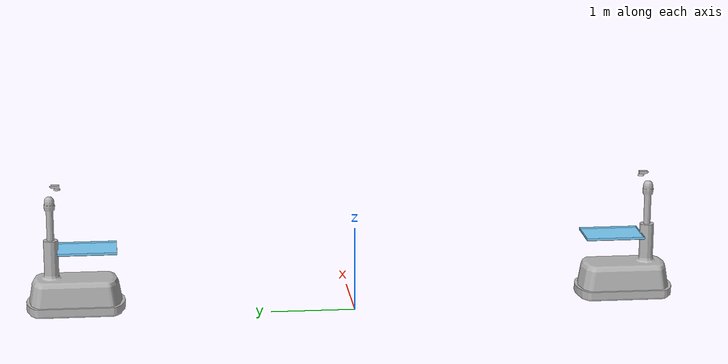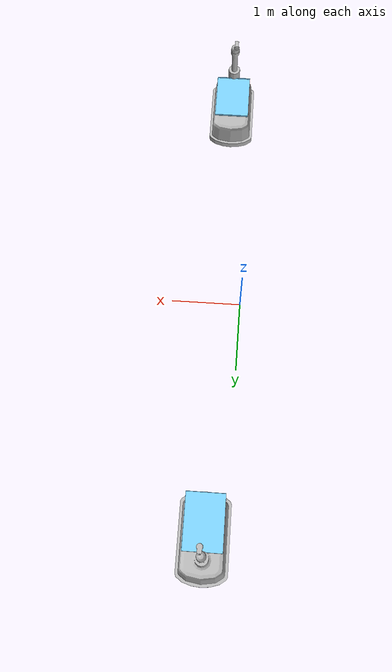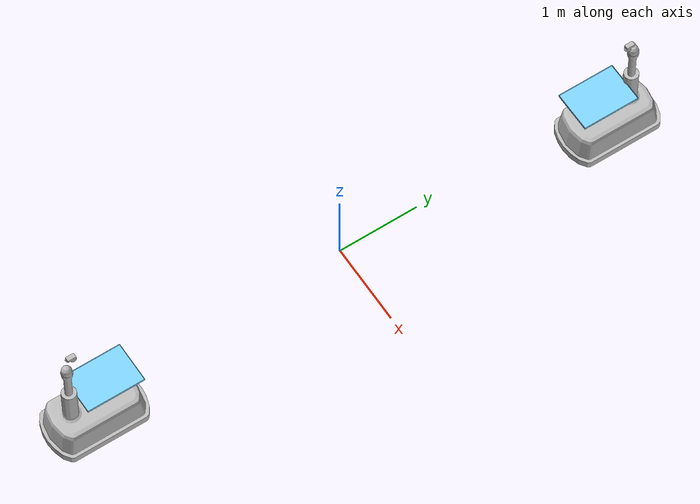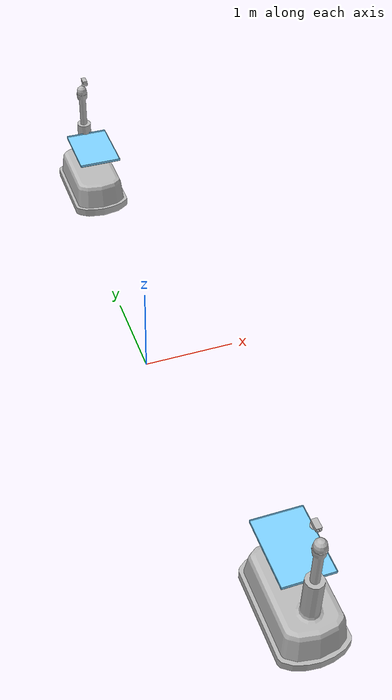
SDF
<sdf version="1.6">
 <world name="ariac">
  <scene><shadows>0</shadows><ambient>0.4 0.4 0.4 1</ambient><background>0.7 0.7 0.7 1</background></scene>
  <light name="sun" type="directional">
   <pose>0 0 10 0 -0 0</pose>
   <diffuse>0.8 0.8 0.8 1</diffuse>
   <specular>0.2 0.2 0.2 1</specular>
   <attenuation>
    <range>1000</range>
    <constant>0.9</constant>
    <linear>0.01</linear>
    <quadratic>0.001</quadratic>
   </attenuation>
   <direction>-0.5 0.1 -0.9</direction>
  </light>
  <light name="camera_spot_light" type="spot">
   <pose>-10 10 10 0 -1 -0.8</pose>
   <diffuse>0.5 0.5 0.5 1</diffuse>
   <specular>0.1 0.1 0.1 1</specular>
   <direction>0 0 -1</direction>
   <attenuation>
    <range>20</range>
    <constant>0.5</constant>
    <linear>0.01</linear>
    <quadratic>0.001</quadratic>
   </attenuation>
   <cast_shadows>0</cast_shadows>
   <spot><inner_angle>0.6</inner_angle><outer_angle>1</outer_angle><falloff>1</falloff></spot>
  </light>
  <model name="deletion_wall">
   <static>1</static>
   <link name="sensing_link">
    <gravity>0</gravity>
    <sensor name="object_disposal_contact" type="contact">
     <update_rate>10</update_rate>
     <contact><collision>collision</collision><topic>__default_topic__</topic></contact>
    </sensor>
    <collision name="collision"><geometry><box><size>0.1 1 1</size></box></geometry></collision>
    <visual name="visual">
     <geometry><box><size>0.1 1 1</size></box></geometry>
     <cast_shadows>0</cast_shadows>
     <transparency>100</transparency>
    </visual>
   </link>
   <plugin name="object_disposal_plugin" filename="libObjectDisposalPlugin.so">
    <contact_sensor_name>object_disposal_contact</contact_sensor_name>
    <contact_side_normal>1 0 0</contact_side_normal>
    <disposal_pose>30 30 0 0 0 0</disposal_pose>
    <update_rate>5</update_rate>
   </plugin>
   <pose>1.2 -4.1 1.41 0 -0 1.5708</pose>
  </model>
  <model name="agv1">
   <pose>0.3 3.3 0 0 -0 3.14159</pose>
   <static>0</static>
   <link name="agv1::link">
    <inertial>
     <pose>0 0 0.15 0 -0 0</pose>
     <mass>50</mass>
     <inertia><ixx>4.5255</ixx><ixy>0</ixy><ixz>0</ixz><iyy>1.45047</iyy><iyz>0</iyz><izz>5.64264</izz></inertia>
    </inertial>
    <visual name="visual">
     <geometry><mesh><uri>model://warehouse_robot/meshes/robot.dae</uri></mesh></geometry>
    </visual>
    <collision name="collision_base">
     <pose>0 0 0.20437 0 -0 0</pose>
     <surface><contact><ode><max_vel>0</max_vel><min_depth>0.001</min_depth></ode></contact></surface>
     <geometry><box><size>0.55508 1.0228 0.40874</size></box></geometry>
    </collision>
    <collision name="collision_bumper">
     <pose>0 0 0.062205 0 -0 0</pose>
     <geometry><box><size>0.67266 1.17126 0.12441</size></box></geometry>
     <surface><contact><ode><max_vel>0</max_vel><min_depth>0.001</min_depth></ode></contact></surface>
    </collision>
    <collision name="collision_column_large">
     <pose>0 -0.27539 0.43738 0 -0 0</pose>
     <geometry><cylinder><radius>0.08652</radius><length>0.87476</length></cylinder></geometry>
     <surface><contact><ode><max_vel>0</max_vel><min_depth>0.001</min_depth></ode></contact></surface>
    </collision>
    <collision name="collision_column_small">
     <pose>0 -0.27539 0.70424 0 -0 0</pose>
     <geometry><cylinder><radius>0.04261</radius><length>1.40848</length></cylinder></geometry>
     <surface><contact><ode><max_vel>0</max_vel><min_depth>0.001</min_depth></ode></contact></surface>
    </collision>
   </link>
   <plugin name="agv_plugin" filename="libROSAGVPlugin.so">
    <submit_tray_service_name>/ariac/submit_tray</submit_tray_service_name>
    <clear_tray_service_name>/ariac/kit_tray_1/clear_tray</clear_tray_service_name>
    <lock_tray_service_name>/ariac/kit_tray_1/lock_models</lock_tray_service_name>
    <index>1</index>
   </plugin>
   <model name="kit_tray_1">
    <pose>0 0.15 0.75 0 -0 0</pose>
    <static>0</static>
    <link name="kit_tray_1::tray">
     <inertial>
      <mass>1</mass>
      <inertia><ixx>0.0408</ixx><ixy>0</ixy><ixz>0</ixz><iyy>0.02084</iyy><iyz>0</iyz><izz>0.0616</izz></inertia>
     </inertial>
     <sensor name="kit_tray_contact" type="contact">
      <update_rate>1</update_rate>
      <contact><collision>tray_collision</collision><topic>__default_topic__</topic></contact>
     </sensor>
     <gravity>0</gravity>
     <collision name="tray_collision">
      <surface><contact><ode><max_vel>0</max_vel><min_depth>0.001</min_depth></ode></contact></surface>
      <geometry><box><size>0.5 0.7 0.01</size></box></geometry>
     </collision>
     <collision name="tray_collision1">
      <pose>0.25 0 0.0127 0 -0 0</pose>
      <surface><contact><ode><max_vel>0</max_vel><min_depth>0.001</min_depth></ode></contact></surface>
      <geometry><box><size>0.001 0.7 0.0254</size></box></geometry>
     </collision>
     <visual name="tray_visual1">
      <pose>0.25 0 0.0127 0 -0 0</pose>
      <geometry><box><size>0.001 0.7 0.0254</size></box></geometry>
      <material><ambient>0.486275 0.819608 1 1</ambient><diffuse>0.486275 0.819608 1 1</diffuse></material>
     </visual>
     <collision name="tray_collision2">
      <pose>-0.25 0 0.0127 0 -0 0</pose>
      <surface><contact><ode><max_vel>0</max_vel><min_depth>0.001</min_depth></ode></contact></surface>
      <geometry><box><size>0.001 0.7 0.0254</size></box></geometry>
     </collision>
     <visual name="tray_visual2">
      <pose>-0.25 0 0.0127 0 -0 0</pose>
      <geometry><box><size>0.001 0.7 0.0254</size></box></geometry>
      <material><ambient>0.486275 0.819608 1 1</ambient><diffuse>0.486275 0.819608 1 1</diffuse></material>
     </visual>
     <collision name="tray_collision3">
      <pose>0 0.35 0.0127 0 -0 0</pose>
      <surface><contact><ode><max_vel>0</max_vel><min_depth>0.001</min_depth></ode></contact></surface>
      <geometry><box><size>0.5 0.001 0.0254</size></box></geometry>
     </collision>
     <visual name="tray_visual3">
      <pose>0 0.35 0.0127 0 -0 0</pose>
      <geometry><box><size>0.5 0.001 0.0254</size></box></geometry>
      <material><ambient>0.486275 0.819608 1 1</ambient><diffuse>0.486275 0.819608 1 1</diffuse></material>
     </visual>
     <collision name="tray_collision4">
      <pose>0 -0.35 0.0127 0 -0 0</pose>
      <surface><contact><ode><max_vel>0</max_vel><min_depth>0.001</min_depth></ode></contact></surface>
      <geometry><box><size>0.5 0.001 0.0254</size></box></geometry>
     </collision>
     <visual name="tray_visual4">
      <pose>0 -0.35 0.0127 0 -0 0</pose>
      <geometry><box><size>0.5 0.001 0.0254</size></box></geometry>
      <material><ambient>0.486275 0.819608 1 1</ambient><diffuse>0.486275 0.819608 1 1</diffuse></material>
     </visual>
     <visual name="visual">
      <geometry><box><size>0.5 0.7 0.01</size></box></geometry>
      <material><ambient>0.486275 0.819608 1 1</ambient><diffuse>0.486275 0.819608 1 1</diffuse></material>
     </visual>
    </link>
    <allow_auto_disable>0</allow_auto_disable>
    <plugin name="kit_tray_plugin" filename="libROSAriacKitTrayPlugin.so">
     <contact_sensor_name>kit_tray_contact</contact_sensor_name>
     <clear_tray_service_name>/ariac/kit_tray_1/clear_tray</clear_tray_service_name>
     <lock_models_service_name>/ariac/kit_tray_1/lock_models</lock_models_service_name>
     <update_rate>20</update_rate>
    </plugin>
   </model>
   <joint name="agv_tray" type="fixed">
    <parent>agv1::link</parent>
    <child>kit_tray_1::kit_tray_1::tray</child>
   </joint>
  </model>
  <model name="quality_control_sensor_1">
   <pose>0.3 3.5 1.5 3.14159 1.56759 1.56759</pose>
   <plugin name="ros_logical_camera" filename="libROSLogicalCameraPlugin.so">
    <robotNamespace>ariac</robotNamespace>
    <position_noise><noise><type>gaussian</type><mean>0.0</mean><stddev>0.001</stddev></noise></position_noise>
    <orientation_noise>
     <noise><type>gaussian</type><mean>0.0</mean><stddev>0.01</stddev></noise>
    </orientation_noise>
   </plugin>
   <link name="link">
    <gravity>0</gravity>
    <inertial>
     <mass>0.1</mass>
     <inertia>
      <ixx>0.000166667</ixx>
      <iyy>0.000166667</iyy>
      <izz>0.000166667</izz>
      <ixy>0</ixy>
      <ixz>0</ixz>
      <iyz>0</iyz>
     </inertia>
    </inertial>
    <collision name="collision">
     <pose>0 0.02 0 0 0 -1.5708</pose>
     <geometry><mesh><uri>model://logical_camera/meshes/camera.dae</uri></mesh></geometry>
    </collision>
    <visual name="visual">
     <pose>0 0.02 0 0 0 -1.5708</pose>
     <geometry><mesh><uri>model://logical_camera/meshes/camera.dae</uri></mesh></geometry>
    </visual>
    <sensor name="logical_camera" type="logical_camera">
     <logical_camera>
      <near>0.73</near>
      <far>0.78</far>
      <horizontal_fov>0.7</horizontal_fov>
      <aspect_ratio>0.35</aspect_ratio>
     </logical_camera>
     <visualize>0</visualize>
     <always_on>1</always_on>
     <update_rate>10</update_rate>
    </sensor>
   </link>
  </model>
  <model name="agv2">
   <pose>0.3 -3.3 0 0 -0 0</pose>
   <static>0</static>
   <link name="agv2::link">
    <inertial>
     <pose>0 0 0.15 0 -0 0</pose>
     <mass>50</mass>
     <inertia><ixx>4.5255</ixx><ixy>0</ixy><ixz>0</ixz><iyy>1.45047</iyy><iyz>0</iyz><izz>5.64264</izz></inertia>
    </inertial>
    <visual name="visual">
     <geometry><mesh><uri>model://warehouse_robot/meshes/robot.dae</uri></mesh></geometry>
    </visual>
    <collision name="collision_base">
     <pose>0 0 0.20437 0 -0 0</pose>
     <surface><contact><ode><max_vel>0</max_vel><min_depth>0.001</min_depth></ode></contact></surface>
     <geometry><box><size>0.55508 1.0228 0.40874</size></box></geometry>
    </collision>
    <collision name="collision_bumper">
     <pose>0 0 0.062205 0 -0 0</pose>
     <geometry><box><size>0.67266 1.17126 0.12441</size></box></geometry>
     <surface><contact><ode><max_vel>0</max_vel><min_depth>0.001</min_depth></ode></contact></surface>
    </collision>
    <collision name="collision_column_large">
     <pose>0 -0.27539 0.43738 0 -0 0</pose>
     <geometry><cylinder><radius>0.08652</radius><length>0.87476</length></cylinder></geometry>
     <surface><contact><ode><max_vel>0</max_vel><min_depth>0.001</min_depth></ode></contact></surface>
    </collision>
    <collision name="collision_column_small">
     <pose>0 -0.27539 0.70424 0 -0 0</pose>
     <geometry><cylinder><radius>0.04261</radius><length>1.40848</length></cylinder></geometry>
     <surface><contact><ode><max_vel>0</max_vel><min_depth>0.001</min_depth></ode></contact></surface>
    </collision>
   </link>
   <plugin name="agv_plugin" filename="libROSAGVPlugin.so">
    <submit_tray_service_name>/ariac/submit_tray</submit_tray_service_name>
    <clear_tray_service_name>/ariac/kit_tray_2/clear_tray</clear_tray_service_name>
    <lock_tray_service_name>/ariac/kit_tray_2/lock_models</lock_tray_service_name>
    <index>2</index>
   </plugin>
   <model name="kit_tray_2">
    <pose>0 0.15 0.75 0 -0 0</pose>
    <static>0</static>
    <link name="kit_tray_2::tray">
     <inertial>
      <mass>1</mass>
      <inertia><ixx>0.0408</ixx><ixy>0</ixy><ixz>0</ixz><iyy>0.02084</iyy><iyz>0</iyz><izz>0.0616</izz></inertia>
     </inertial>
     <sensor name="kit_tray_contact" type="contact">
      <update_rate>1</update_rate>
      <contact><collision>tray_collision</collision><topic>__default_topic__</topic></contact>
     </sensor>
     <gravity>0</gravity>
     <collision name="tray_collision">
      <surface><contact><ode><max_vel>0</max_vel><min_depth>0.001</min_depth></ode></contact></surface>
      <geometry><box><size>0.5 0.7 0.01</size></box></geometry>
     </collision>
     <collision name="tray_collision1">
      <pose>0.25 0 0.0127 0 -0 0</pose>
      <surface><contact><ode><max_vel>0</max_vel><min_depth>0.001</min_depth></ode></contact></surface>
      <geometry><box><size>0.001 0.7 0.0254</size></box></geometry>
     </collision>
     <visual name="tray_visual1">
      <pose>0.25 0 0.0127 0 -0 0</pose>
      <geometry><box><size>0.001 0.7 0.0254</size></box></geometry>
      <material><ambient>0.486275 0.819608 1 1</ambient><diffuse>0.486275 0.819608 1 1</diffuse></material>
     </visual>
     <collision name="tray_collision2">
      <pose>-0.25 0 0.0127 0 -0 0</pose>
      <surface><contact><ode><max_vel>0</max_vel><min_depth>0.001</min_depth></ode></contact></surface>
      <geometry><box><size>0.001 0.7 0.0254</size></box></geometry>
     </collision>
     <visual name="tray_visual2">
      <pose>-0.25 0 0.0127 0 -0 0</pose>
      <geometry><box><size>0.001 0.7 0.0254</size></box></geometry>
      <material><ambient>0.486275 0.819608 1 1</ambient><diffuse>0.486275 0.819608 1 1</diffuse></material>
     </visual>
     <collision name="tray_collision3">
      <pose>0 0.35 0.0127 0 -0 0</pose>
      <surface><contact><ode><max_vel>0</max_vel><min_depth>0.001</min_depth></ode></contact></surface>
      <geometry><box><size>0.5 0.001 0.0254</size></box></geometry>
     </collision>
     <visual name="tray_visual3">
      <pose>0 0.35 0.0127 0 -0 0</pose>
      <geometry><box><size>0.5 0.001 0.0254</size></box></geometry>
      <material><ambient>0.486275 0.819608 1 1</ambient><diffuse>0.486275 0.819608 1 1</diffuse></material>
     </visual>
     <collision name="tray_collision4">
      <pose>0 -0.35 0.0127 0 -0 0</pose>
      <surface><contact><ode><max_vel>0</max_vel><min_depth>0.001</min_depth></ode></contact></surface>
      <geometry><box><size>0.5 0.001 0.0254</size></box></geometry>
     </collision>
     <visual name="tray_visual4">
      <pose>0 -0.35 0.0127 0 -0 0</pose>
      <geometry><box><size>0.5 0.001 0.0254</size></box></geometry>
      <material><ambient>0.486275 0.819608 1 1</ambient><diffuse>0.486275 0.819608 1 1</diffuse></material>
     </visual>
     <visual name="visual">
      <geometry><box><size>0.5 0.7 0.01</size></box></geometry>
      <material><ambient>0.486275 0.819608 1 1</ambient><diffuse>0.486275 0.819608 1 1</diffuse></material>
     </visual>
    </link>
    <allow_auto_disable>0</allow_auto_disable>
    <plugin name="kit_tray_plugin" filename="libROSAriacKitTrayPlugin.so">
     <contact_sensor_name>kit_tray_contact</contact_sensor_name>
     <clear_tray_service_name>/ariac/kit_tray_2/clear_tray</clear_tray_service_name>
     <lock_models_service_name>/ariac/kit_tray_2/lock_models</lock_models_service_name>
     <update_rate>20</update_rate>
    </plugin>
   </model>
   <joint name="agv_tray" type="fixed">
    <parent>agv2::link</parent>
    <child>kit_tray_2::kit_tray_2::tray</child>
   </joint>
  </model>
  <model name="quality_control_sensor_2">
   <pose>0.3 -3.5 1.5 -3.14159 1.56759 -1.56759</pose>
   <plugin name="ros_logical_camera" filename="libROSLogicalCameraPlugin.so">
    <robotNamespace>ariac</robotNamespace>
    <position_noise><noise><type>gaussian</type><mean>0.0</mean><stddev>0.001</stddev></noise></position_noise>
    <orientation_noise>
     <noise><type>gaussian</type><mean>0.0</mean><stddev>0.01</stddev></noise>
    </orientation_noise>
   </plugin>
   <link name="link">
    <gravity>0</gravity>
    <inertial>
     <mass>0.1</mass>
     <inertia>
      <ixx>0.000166667</ixx>
      <iyy>0.000166667</iyy>
      <izz>0.000166667</izz>
      <ixy>0</ixy>
      <ixz>0</ixz>
      <iyz>0</iyz>
     </inertia>
    </inertial>
    <collision name="collision">
     <pose>0 0.02 0 0 0 -1.5708</pose>
     <geometry><mesh><uri>model://logical_camera/meshes/camera.dae</uri></mesh></geometry>
    </collision>
    <visual name="visual">
     <pose>0 0.02 0 0 0 -1.5708</pose>
     <geometry><mesh><uri>model://logical_camera/meshes/camera.dae</uri></mesh></geometry>
    </visual>
    <sensor name="logical_camera" type="logical_camera">
     <logical_camera>
      <near>0.73</near>
      <far>0.78</far>
      <horizontal_fov>0.7</horizontal_fov>
      <aspect_ratio>0.35</aspect_ratio>
     </logical_camera>
     <visualize>0</visualize>
     <always_on>1</always_on>
     <update_rate>10</update_rate>
    </sensor>
   </link>
  </model>
  <model name="conveyor_belt">
   <model name="conveyor_belt_fixed">
    <static>1</static>
    <pose>1.21 5 0.8126 0 0 -1.57079</pose>
    <link name="link"/>
   </model>
   <model name="conveyor_belt_moving">
    <static>0</static>
    <pose>1.21 -2 0.8126 0 0 -1.57079</pose>
    <link name="belt">
     <pose>-5 0 0 0 -0 0</pose>
     <inertial>
      <inertia><ixx>3.8185</ixx><ixy>0</ixy><ixz>0</ixz><iyy>1781.5</iyy><iyz>0</iyz><izz>1784.72</izz></inertia>
      <mass>100</mass>
     </inertial>
     <collision name="belt_collision">
      <geometry><box><size>14.6221 0.65461 0.18862</size></box></geometry>
      <surface>
       <friction>
        <ode><mu>1</mu><mu2>1</mu2></ode>
        <torsional><coefficient>1000</coefficient><patch_radius>0.1</patch_radius></torsional>
       </friction>
      </surface>
     </collision>
    </link>
   </model>
   <joint name="belt_joint" type="prismatic">
    <parent>conveyor_belt_fixed::link</parent>
    <child>conveyor_belt_moving::belt</child>
    <axis>
     <xyz>1 0 0</xyz>
     <limit><lower>0</lower><upper>1</upper></limit>
     <use_parent_model_frame>0</use_parent_model_frame>
     <dynamics><spring_reference>0</spring_reference><spring_stiffness>0</spring_stiffness></dynamics>
    </axis>
   </joint>
   <plugin name="conveyor_belt_plugin" filename="libROSConveyorBeltPlugin.so">
    <robot_namespace>/ariac</robot_namespace>
    <population_rate_modifier_topic>/ariac/population/rate_modifier</population_rate_modifier_topic>
    <link>conveyor_belt::conveyor_belt_moving::belt</link>
    <power>0</power>
   </plugin>
  </model>
  <plugin name="task_manager" filename="libROSAriacTaskManagerPlugin.so">
   <robot_namespace>ariac</robot_namespace>
   <competition_time_limit>500</competition_time_limit>
   <start_competition_service_name>/ariac/start_competition</start_competition_service_name>
   <end_competition_service_name>/ariac/end_competition</end_competition_service_name>
   <population_activate_topic>/ariac/populate_belt</population_activate_topic>
   <conveyor_control_topic>/ariac/conveyor/control</conveyor_control_topic>
   <submit_tray_service_name>/ariac/submit_tray</submit_tray_service_name>
   <material_locations_service_name>/ariac/material_locations</material_locations_service_name>
   <orders_topic>/ariac/orders</orders_topic>
   <material_locations>
    <material>
     <type>tray</type>
     <location><storage_unit>agv1_load_point</storage_unit></location>
     <location><storage_unit>agv2_load_point</storage_unit></location>
    </material>
   </material_locations>
  </plugin>
  <gravity>0 0 -9.8</gravity>
  <magnetic_field>6e-06 2.3e-05 -4.2e-05</magnetic_field>
  <atmosphere type="adiabatic"/>
  <physics name="default_physics" default="0" type="ode">
   <max_step_size>0.001</max_step_size>
   <real_time_factor>1</real_time_factor>
   <real_time_update_rate>1000</real_time_update_rate>
  </physics>
  <spherical_coordinates>
   <surface_model>EARTH_WGS84</surface_model>
   <latitude_deg>0</latitude_deg>
   <longitude_deg>0</longitude_deg>
   <elevation>0</elevation>
   <heading_deg>0</heading_deg>
  </spherical_coordinates>
 </world>
</sdf>
